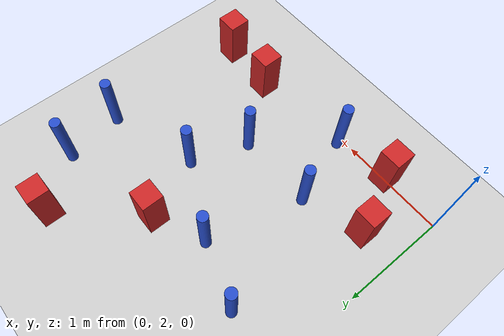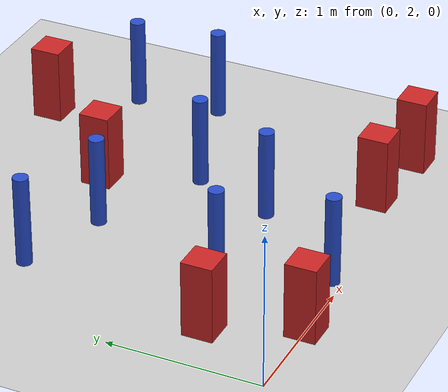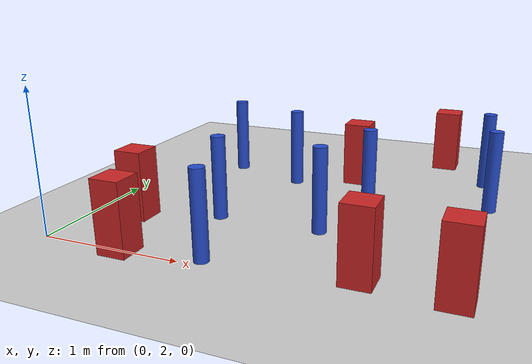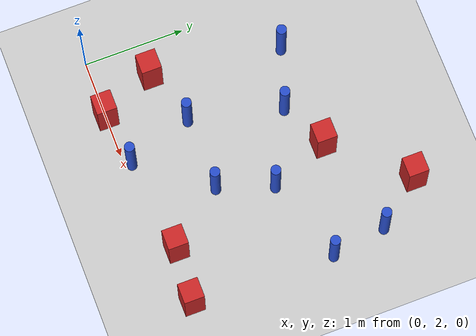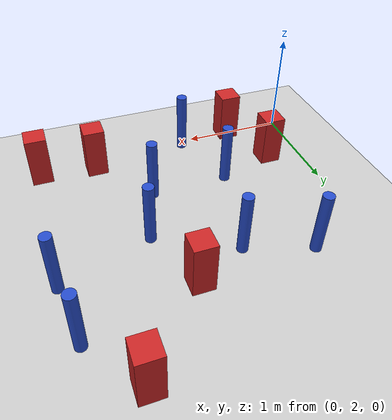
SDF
<sdf version="1.6">
 <world name="default">
  <model name="ground_plane">
   <static>1</static>
   <link name="link">
    <collision name="collision">
     <geometry><plane><normal>0 0 1</normal><size>100 100</size></plane></geometry>
     <surface><friction><ode><mu>100</mu><mu2>50</mu2></ode></friction></surface>
    </collision>
    <visual name="visual">
     <cast_shadows>0</cast_shadows>
     <geometry><plane><normal>0 0 1</normal><size>100 100</size></plane></geometry>
     <material>
      <ambient>1.0 1.0 1.0 1.0</ambient>
      <diffuse>0.8 0.8 0.8 1.0</diffuse>
      <specular>0.01 0.01 0.01 1.000000</specular>
     </material>
    </visual>
   </link>
  </model>
  <model name="square_post_obstacle25">
   <static>true</static>
   <pose>2.6235593955 2.12843442732 1.91545236811e-07 -7.35059704564e-06 1.12565212e-07 2.39332434364e-05</pose>
   <link name="link">
    <pose>0 0 0.25 0 -0 0</pose>
    <inertial>
     <mass>100</mass>
     <inertia>
      <ixx>0.166667</ixx>
      <ixy>0</ixy>
      <ixz>0</ixz>
      <iyy>0.166667</iyy>
      <iyz>0</iyz>
      <izz>0.166667</izz>
     </inertia>
    </inertial>
    <collision name="collision"><geometry><box><size>.2 .2 .5</size></box></geometry></collision>
    <visual name="visual">
     <geometry><box><size>.2 .2 .5</size></box></geometry>
     <material>
      <script><name>Gazebo/Red</name><uri>file://media/materials/scripts/gazebo.material</uri></script>
     </material>
    </visual>
   </link>
  </model>
  <model name="pole_obstacle19">
   <static>true</static>
   <pose>0.542092980474 3.83562764258 7.38925637345e-09 -8.471706928e-08 1.2497676512e-08 -1.74513093015e-07</pose>
   <link name="link">
    <pose>0 0 0.3 0 -0 0</pose>
    <inertial>
     <mass>1</mass>
     <inertia><ixx>0.145833</ixx><ixy>0</ixy><ixz>0</ixz><iyy>0.145833</iyy><iyz>0</iyz><izz>0.125</izz></inertia>
    </inertial>
    <collision name="collision">
     <geometry><cylinder><radius>0.05</radius><length>.6</length></cylinder></geometry>
    </collision>
    <visual name="visual">
     <geometry><cylinder><radius>0.05</radius><length>.6</length></cylinder></geometry>
     <material>
      <script><name>Gazebo/Blue</name><uri>file://media/materials/scripts/gazebo.material</uri></script>
     </material>
    </visual>
   </link>
  </model>
  <model name="pole_obstacle50">
   <static>true</static>
   <pose>1.83860311054 3.27891546716 7.38925637345e-09 -8.47170692799e-08 1.24976765053e-08 -1.74513093017e-07</pose>
   <link name="link">
    <pose>0 0 0.3 0 -0 0</pose>
    <inertial>
     <mass>1</mass>
     <inertia><ixx>0.145833</ixx><ixy>0</ixy><ixz>0</ixz><iyy>0.145833</iyy><iyz>0</iyz><izz>0.125</izz></inertia>
    </inertial>
    <collision name="collision">
     <geometry><cylinder><radius>0.05</radius><length>.6</length></cylinder></geometry>
    </collision>
    <visual name="visual">
     <geometry><cylinder><radius>0.05</radius><length>.6</length></cylinder></geometry>
     <material>
      <script><name>Gazebo/Blue</name><uri>file://media/materials/scripts/gazebo.material</uri></script>
     </material>
    </visual>
   </link>
  </model>
  <model name="square_post_obstacle56">
   <static>true</static>
   <pose>2.08354726394 2.17058025735 1.91545236811e-07 -7.35059704564e-06 1.12565212e-07 2.39332434364e-05</pose>
   <link name="link">
    <pose>0 0 0.25 0 -0 0</pose>
    <inertial>
     <mass>100</mass>
     <inertia>
      <ixx>0.166667</ixx>
      <ixy>0</ixy>
      <ixz>0</ixz>
      <iyy>0.166667</iyy>
      <iyz>0</iyz>
      <izz>0.166667</izz>
     </inertia>
    </inertial>
    <collision name="collision"><geometry><box><size>.2 .2 .5</size></box></geometry></collision>
    <visual name="visual">
     <geometry><box><size>.2 .2 .5</size></box></geometry>
     <material>
      <script><name>Gazebo/Red</name><uri>file://media/materials/scripts/gazebo.material</uri></script>
     </material>
    </visual>
   </link>
  </model>
  <model name="pole_obstacle72">
   <static>true</static>
   <pose>2.59559224451 4.10149492091 7.38925637345e-09 -8.47170692798e-08 1.24976765033e-08 -1.74513093019e-07</pose>
   <link name="link">
    <pose>0 0 0.3 0 -0 0</pose>
    <inertial>
     <mass>1</mass>
     <inertia><ixx>0.145833</ixx><ixy>0</ixy><ixz>0</ixz><iyy>0.145833</iyy><iyz>0</iyz><izz>0.125</izz></inertia>
    </inertial>
    <collision name="collision">
     <geometry><cylinder><radius>0.05</radius><length>.6</length></cylinder></geometry>
    </collision>
    <visual name="visual">
     <geometry><cylinder><radius>0.05</radius><length>.6</length></cylinder></geometry>
     <material>
      <script><name>Gazebo/Blue</name><uri>file://media/materials/scripts/gazebo.material</uri></script>
     </material>
    </visual>
   </link>
  </model>
  <model name="pole_obstacle81">
   <static>true</static>
   <pose>2.67766484859 3.55280561187 7.38925637345e-09 -8.47170692798e-08 1.24976764939e-08 -1.74513093025e-07</pose>
   <link name="link">
    <pose>0 0 0.3 0 -0 0</pose>
    <inertial>
     <mass>1</mass>
     <inertia><ixx>0.145833</ixx><ixy>0</ixy><ixz>0</ixz><iyy>0.145833</iyy><iyz>0</iyz><izz>0.125</izz></inertia>
    </inertial>
    <collision name="collision">
     <geometry><cylinder><radius>0.05</radius><length>.6</length></cylinder></geometry>
    </collision>
    <visual name="visual">
     <geometry><cylinder><radius>0.05</radius><length>.6</length></cylinder></geometry>
     <material>
      <script><name>Gazebo/Blue</name><uri>file://media/materials/scripts/gazebo.material</uri></script>
     </material>
    </visual>
   </link>
  </model>
  <model name="pole_obstacle87">
   <static>true</static>
   <pose>1.13121682238 2.06816425038 7.38925637345e-09 -8.47170692799e-08 1.24976765053e-08 -1.74513093017e-07</pose>
   <link name="link">
    <pose>0 0 0.3 0 -0 0</pose>
    <inertial>
     <mass>1</mass>
     <inertia><ixx>0.145833</ixx><ixy>0</ixy><ixz>0</ixz><iyy>0.145833</iyy><iyz>0</iyz><izz>0.125</izz></inertia>
    </inertial>
    <collision name="collision">
     <geometry><cylinder><radius>0.05</radius><length>.6</length></cylinder></geometry>
    </collision>
    <visual name="visual">
     <geometry><cylinder><radius>0.05</radius><length>.6</length></cylinder></geometry>
     <material>
      <script><name>Gazebo/Blue</name><uri>file://media/materials/scripts/gazebo.material</uri></script>
     </material>
    </visual>
   </link>
  </model>
  <model name="pole_obstacle101">
   <static>true</static>
   <pose>1.13627000548 3.64099175233 7.38925637345e-09 -8.47170692799e-08 1.24976765053e-08 -1.74513093017e-07</pose>
   <link name="link">
    <pose>0 0 0.3 0 -0 0</pose>
    <inertial>
     <mass>1</mass>
     <inertia><ixx>0.145833</ixx><ixy>0</ixy><ixz>0</ixz><iyy>0.145833</iyy><iyz>0</iyz><izz>0.125</izz></inertia>
    </inertial>
    <collision name="collision">
     <geometry><cylinder><radius>0.05</radius><length>.6</length></cylinder></geometry>
    </collision>
    <visual name="visual">
     <geometry><cylinder><radius>0.05</radius><length>.6</length></cylinder></geometry>
     <material>
      <script><name>Gazebo/Blue</name><uri>file://media/materials/scripts/gazebo.material</uri></script>
     </material>
    </visual>
   </link>
  </model>
  <model name="square_post_obstacle114">
   <static>true</static>
   <pose>2.22829622372 4.54669337716 1.91545236811e-07 -7.35059704564e-06 1.12565212e-07 2.39332434364e-05</pose>
   <link name="link">
    <pose>0 0 0.25 0 -0 0</pose>
    <inertial>
     <mass>100</mass>
     <inertia>
      <ixx>0.166667</ixx>
      <ixy>0</ixy>
      <ixz>0</ixz>
      <iyy>0.166667</iyy>
      <iyz>0</iyz>
      <izz>0.166667</izz>
     </inertia>
    </inertial>
    <collision name="collision"><geometry><box><size>.2 .2 .5</size></box></geometry></collision>
    <visual name="visual">
     <geometry><box><size>.2 .2 .5</size></box></geometry>
     <material>
      <script><name>Gazebo/Red</name><uri>file://media/materials/scripts/gazebo.material</uri></script>
     </material>
    </visual>
   </link>
  </model>
  <model name="pole_obstacle134">
   <static>true</static>
   <pose>0.908390922016 2.72489442957 7.38925637345e-09 -8.47170692799e-08 1.2497676509e-08 -1.74513093016e-07</pose>
   <link name="link">
    <pose>0 0 0.3 0 -0 0</pose>
    <inertial>
     <mass>1</mass>
     <inertia><ixx>0.145833</ixx><ixy>0</ixy><ixz>0</ixz><iyy>0.145833</iyy><iyz>0</iyz><izz>0.125</izz></inertia>
    </inertial>
    <collision name="collision">
     <geometry><cylinder><radius>0.05</radius><length>.6</length></cylinder></geometry>
    </collision>
    <visual name="visual">
     <geometry><cylinder><radius>0.05</radius><length>.6</length></cylinder></geometry>
     <material>
      <script><name>Gazebo/Blue</name><uri>file://media/materials/scripts/gazebo.material</uri></script>
     </material>
    </visual>
   </link>
  </model>
  <model name="square_post_obstacle187">
   <static>true</static>
   <pose>1.60410186637 3.85938114684 1.91545236811e-07 -7.35059704564e-06 1.12565212e-07 2.39332434364e-05</pose>
   <link name="link">
    <pose>0 0 0.25 0 -0 0</pose>
    <inertial>
     <mass>100</mass>
     <inertia>
      <ixx>0.166667</ixx>
      <ixy>0</ixy>
      <ixz>0</ixz>
      <iyy>0.166667</iyy>
      <iyz>0</iyz>
      <izz>0.166667</izz>
     </inertia>
    </inertial>
    <collision name="collision"><geometry><box><size>.2 .2 .5</size></box></geometry></collision>
    <visual name="visual">
     <geometry><box><size>.2 .2 .5</size></box></geometry>
     <material>
      <script><name>Gazebo/Red</name><uri>file://media/materials/scripts/gazebo.material</uri></script>
     </material>
    </visual>
   </link>
  </model>
  <model name="square_post_obstacle205">
   <static>true</static>
   <pose>0.591587658816 1.9988092113 1.91545236811e-07 -7.35059704564e-06 1.12565212e-07 2.39332434364e-05</pose>
   <link name="link">
    <pose>0 0 0.25 0 -0 0</pose>
    <inertial>
     <mass>100</mass>
     <inertia>
      <ixx>0.166667</ixx>
      <ixy>0</ixy>
      <ixz>0</ixz>
      <iyy>0.166667</iyy>
      <iyz>0</iyz>
      <izz>0.166667</izz>
     </inertia>
    </inertial>
    <collision name="collision"><geometry><box><size>.2 .2 .5</size></box></geometry></collision>
    <visual name="visual">
     <geometry><box><size>.2 .2 .5</size></box></geometry>
     <material>
      <script><name>Gazebo/Red</name><uri>file://media/materials/scripts/gazebo.material</uri></script>
     </material>
    </visual>
   </link>
  </model>
  <model name="square_post_obstacle206">
   <static>true</static>
   <pose>0.353870982407 2.54080616968 1.91545236811e-07 -7.35059704564e-06 1.12565212e-07 2.39332434364e-05</pose>
   <link name="link">
    <pose>0 0 0.25 0 -0 0</pose>
    <inertial>
     <mass>100</mass>
     <inertia>
      <ixx>0.166667</ixx>
      <ixy>0</ixy>
      <ixz>0</ixz>
      <iyy>0.166667</iyy>
      <iyz>0</iyz>
      <izz>0.166667</izz>
     </inertia>
    </inertial>
    <collision name="collision"><geometry><box><size>.2 .2 .5</size></box></geometry></collision>
    <visual name="visual">
     <geometry><box><size>.2 .2 .5</size></box></geometry>
     <material>
      <script><name>Gazebo/Red</name><uri>file://media/materials/scripts/gazebo.material</uri></script>
     </material>
    </visual>
   </link>
  </model>
  <model name="pole_obstacle221">
   <static>true</static>
   <pose>1.64922000957 2.73626002078 7.38925637345e-09 -8.47170692793e-08 1.24976764479e-08 -1.74513093037e-07</pose>
   <link name="link">
    <pose>0 0 0.3 0 -0 0</pose>
    <inertial>
     <mass>1</mass>
     <inertia><ixx>0.145833</ixx><ixy>0</ixy><ixz>0</ixz><iyy>0.145833</iyy><iyz>0</iyz><izz>0.125</izz></inertia>
    </inertial>
    <collision name="collision">
     <geometry><cylinder><radius>0.05</radius><length>.6</length></cylinder></geometry>
    </collision>
    <visual name="visual">
     <geometry><cylinder><radius>0.05</radius><length>.6</length></cylinder></geometry>
     <material>
      <script><name>Gazebo/Blue</name><uri>file://media/materials/scripts/gazebo.material</uri></script>
     </material>
    </visual>
   </link>
  </model>
 </world>
</sdf>
